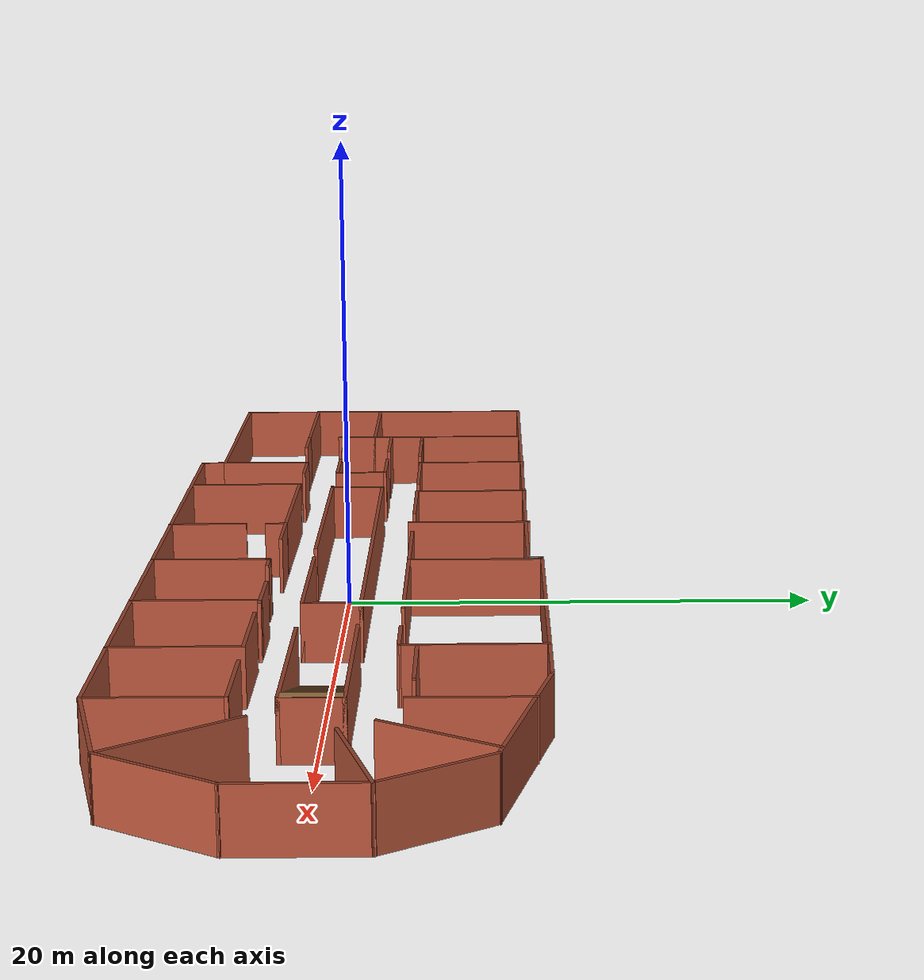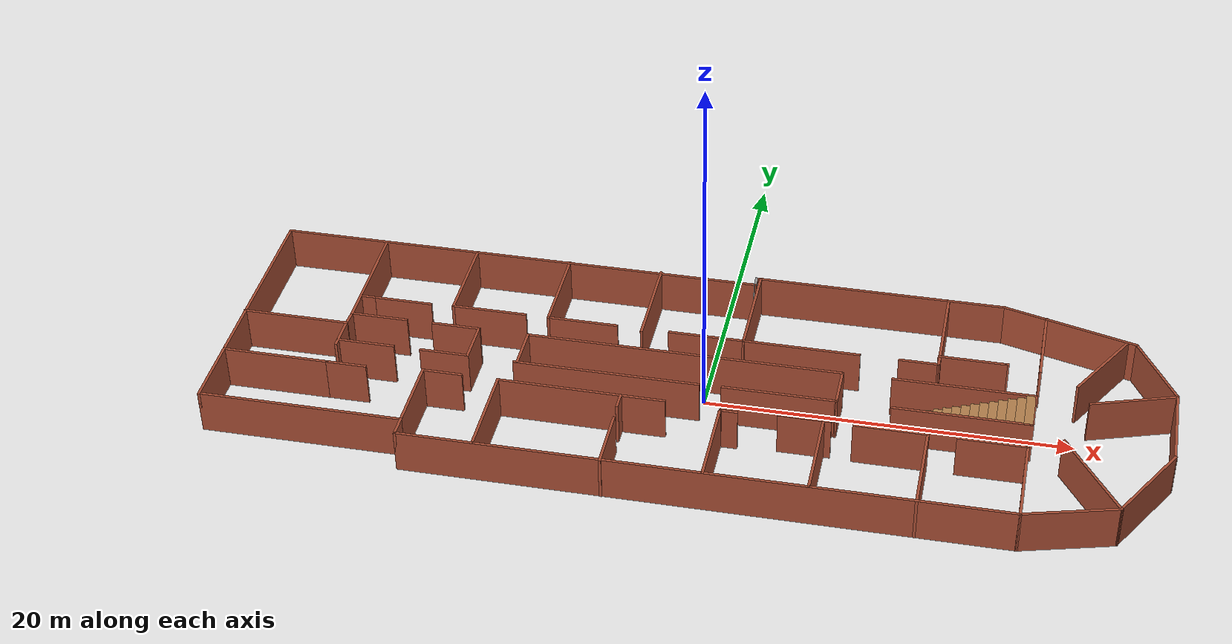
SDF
<?xml version='1.0'?>
<sdf version='1.7'>
  <model name='5ogNoWindowNoDoor'>
    <pose>-0.42618 0.023689 0 0 -0 0</pose>
    <link name='Stairs_2'>
      <visual name='Stairs_2_Visual_0'>
        <pose>11.0898 -0.209207 0.083333 0 -0 1.5708</pose>
        <geometry>
          <box>
            <size>2.26715 0.484083 0.166667</size>
          </box>
        </geometry>
        <material>
          <script>
            <uri>file://media/materials/scripts/gazebo.material</uri>
            <name>Gazebo/Wood</name>
          </script>
          <ambient>1 1 1 1</ambient>
        </material>
        <meta>
          <layer>0</layer>
        </meta>
      </visual>
      <collision name='Stairs_2_Collision_0'>
        <geometry>
          <box>
            <size>2.26715 0.484083 0.166667</size>
          </box>
        </geometry>
        <pose>11.0898 -0.209207 0.083333 0 -0 1.5708</pose>
      </collision>
      <visual name='Stairs_2_Visual_1'>
        <pose>11.5739 -0.209207 0.25 0 -0 1.5708</pose>
        <geometry>
          <box>
            <size>2.26715 0.484083 0.166667</size>
          </box>
        </geometry>
        <material>
          <script>
            <uri>file://media/materials/scripts/gazebo.material</uri>
            <name>Gazebo/Wood</name>
          </script>
          <ambient>1 1 1 1</ambient>
        </material>
        <meta>
          <layer>0</layer>
        </meta>
      </visual>
      <collision name='Stairs_2_Collision_1'>
        <geometry>
          <box>
            <size>2.26715 0.484083 0.166667</size>
          </box>
        </geometry>
        <pose>11.5739 -0.209207 0.25 0 -0 1.5708</pose>
      </collision>
      <visual name='Stairs_2_Visual_2'>
        <pose>12.058 -0.209207 0.416667 0 -0 1.5708</pose>
        <geometry>
          <box>
            <size>2.26715 0.484083 0.166667</size>
          </box>
        </geometry>
        <material>
          <script>
            <uri>file://media/materials/scripts/gazebo.material</uri>
            <name>Gazebo/Wood</name>
          </script>
          <ambient>1 1 1 1</ambient>
        </material>
        <meta>
          <layer>0</layer>
        </meta>
      </visual>
      <collision name='Stairs_2_Collision_2'>
        <geometry>
          <box>
            <size>2.26715 0.484083 0.166667</size>
          </box>
        </geometry>
        <pose>12.058 -0.209207 0.416667 0 -0 1.5708</pose>
      </collision>
      <visual name='Stairs_2_Visual_3'>
        <pose>12.542 -0.209207 0.583333 0 -0 1.5708</pose>
        <geometry>
          <box>
            <size>2.26715 0.484083 0.166667</size>
          </box>
        </geometry>
        <material>
          <script>
            <uri>file://media/materials/scripts/gazebo.material</uri>
            <name>Gazebo/Wood</name>
          </script>
          <ambient>1 1 1 1</ambient>
        </material>
        <meta>
          <layer>0</layer>
        </meta>
      </visual>
      <collision name='Stairs_2_Collision_3'>
        <geometry>
          <box>
            <size>2.26715 0.484083 0.166667</size>
          </box>
        </geometry>
        <pose>12.542 -0.209207 0.583333 0 -0 1.5708</pose>
      </collision>
      <visual name='Stairs_2_Visual_4'>
        <pose>13.0261 -0.209207 0.75 0 -0 1.5708</pose>
        <geometry>
          <box>
            <size>2.26715 0.484083 0.166667</size>
          </box>
        </geometry>
        <material>
          <script>
            <uri>file://media/materials/scripts/gazebo.material</uri>
            <name>Gazebo/Wood</name>
          </script>
          <ambient>1 1 1 1</ambient>
        </material>
        <meta>
          <layer>0</layer>
        </meta>
      </visual>
      <collision name='Stairs_2_Collision_4'>
        <geometry>
          <box>
            <size>2.26715 0.484083 0.166667</size>
          </box>
        </geometry>
        <pose>13.0261 -0.209207 0.75 0 -0 1.5708</pose>
      </collision>
      <visual name='Stairs_2_Visual_5'>
        <pose>13.5102 -0.209207 0.916667 0 -0 1.5708</pose>
        <geometry>
          <box>
            <size>2.26715 0.484083 0.166667</size>
          </box>
        </geometry>
        <material>
          <script>
            <uri>file://media/materials/scripts/gazebo.material</uri>
            <name>Gazebo/Wood</name>
          </script>
          <ambient>1 1 1 1</ambient>
        </material>
        <meta>
          <layer>0</layer>
        </meta>
      </visual>
      <collision name='Stairs_2_Collision_5'>
        <geometry>
          <box>
            <size>2.26715 0.484083 0.166667</size>
          </box>
        </geometry>
        <pose>13.5102 -0.209207 0.916667 0 -0 1.5708</pose>
      </collision>
      <visual name='Stairs_2_Visual_6'>
        <pose>13.9943 -0.209207 1.08333 0 -0 1.5708</pose>
        <geometry>
          <box>
            <size>2.26715 0.484083 0.166667</size>
          </box>
        </geometry>
        <material>
          <script>
            <uri>file://media/materials/scripts/gazebo.material</uri>
            <name>Gazebo/Wood</name>
          </script>
          <ambient>1 1 1 1</ambient>
        </material>
        <meta>
          <layer>0</layer>
        </meta>
      </visual>
      <collision name='Stairs_2_Collision_6'>
        <geometry>
          <box>
            <size>2.26715 0.484083 0.166667</size>
          </box>
        </geometry>
        <pose>13.9943 -0.209207 1.08333 0 -0 1.5708</pose>
      </collision>
      <visual name='Stairs_2_Visual_7'>
        <pose>14.4784 -0.209207 1.25 0 -0 1.5708</pose>
        <geometry>
          <box>
            <size>2.26715 0.484083 0.166667</size>
          </box>
        </geometry>
        <material>
          <script>
            <uri>file://media/materials/scripts/gazebo.material</uri>
            <name>Gazebo/Wood</name>
          </script>
          <ambient>1 1 1 1</ambient>
        </material>
        <meta>
          <layer>0</layer>
        </meta>
      </visual>
      <collision name='Stairs_2_Collision_7'>
        <geometry>
          <box>
            <size>2.26715 0.484083 0.166667</size>
          </box>
        </geometry>
        <pose>14.4784 -0.209207 1.25 0 -0 1.5708</pose>
      </collision>
      <visual name='Stairs_2_Visual_8'>
        <pose>14.9624 -0.209206 1.41667 0 -0 1.5708</pose>
        <geometry>
          <box>
            <size>2.26715 0.484083 0.166667</size>
          </box>
        </geometry>
        <material>
          <script>
            <uri>file://media/materials/scripts/gazebo.material</uri>
            <name>Gazebo/Wood</name>
          </script>
          <ambient>1 1 1 1</ambient>
        </material>
        <meta>
          <layer>0</layer>
        </meta>
      </visual>
      <collision name='Stairs_2_Collision_8'>
        <geometry>
          <box>
            <size>2.26715 0.484083 0.166667</size>
          </box>
        </geometry>
        <pose>14.9624 -0.209206 1.41667 0 -0 1.5708</pose>
      </collision>
      <visual name='Stairs_2_Visual_9'>
        <pose>15.4465 -0.209206 1.58333 0 -0 1.5708</pose>
        <geometry>
          <box>
            <size>2.26715 0.484083 0.166667</size>
          </box>
        </geometry>
        <material>
          <script>
            <uri>file://media/materials/scripts/gazebo.material</uri>
            <name>Gazebo/Wood</name>
          </script>
          <ambient>1 1 1 1</ambient>
        </material>
        <meta>
          <layer>0</layer>
        </meta>
      </visual>
      <collision name='Stairs_2_Collision_9'>
        <geometry>
          <box>
            <size>2.26715 0.484083 0.166667</size>
          </box>
        </geometry>
        <pose>15.4465 -0.209206 1.58333 0 -0 1.5708</pose>
      </collision>
      <visual name='Stairs_2_Visual_10'>
        <pose>15.9306 -0.209206 1.75 0 -0 1.5708</pose>
        <geometry>
          <box>
            <size>2.26715 0.484083 0.166667</size>
          </box>
        </geometry>
        <material>
          <script>
            <uri>file://media/materials/scripts/gazebo.material</uri>
            <name>Gazebo/Wood</name>
          </script>
          <ambient>1 1 1 1</ambient>
        </material>
        <meta>
          <layer>0</layer>
        </meta>
      </visual>
      <collision name='Stairs_2_Collision_10'>
        <geometry>
          <box>
            <size>2.26715 0.484083 0.166667</size>
          </box>
        </geometry>
        <pose>15.9306 -0.209206 1.75 0 -0 1.5708</pose>
      </collision>
      <visual name='Stairs_2_Visual_11'>
        <pose>16.4147 -0.209206 1.91667 0 -0 1.5708</pose>
        <geometry>
          <box>
            <size>2.26715 0.484083 0.166667</size>
          </box>
        </geometry>
        <material>
          <script>
            <uri>file://media/materials/scripts/gazebo.material</uri>
            <name>Gazebo/Wood</name>
          </script>
          <ambient>1 1 1 1</ambient>
        </material>
        <meta>
          <layer>0</layer>
        </meta>
      </visual>
      <collision name='Stairs_2_Collision_11'>
        <geometry>
          <box>
            <size>2.26715 0.484083 0.166667</size>
          </box>
        </geometry>
        <pose>16.4147 -0.209206 1.91667 0 -0 1.5708</pose>
      </collision>
      <visual name='Stairs_2_Visual_12'>
        <pose>16.8988 -0.209206 2.08333 0 -0 1.5708</pose>
        <geometry>
          <box>
            <size>2.26715 0.484083 0.166667</size>
          </box>
        </geometry>
        <material>
          <script>
            <uri>file://media/materials/scripts/gazebo.material</uri>
            <name>Gazebo/Wood</name>
          </script>
          <ambient>1 1 1 1</ambient>
        </material>
        <meta>
          <layer>0</layer>
        </meta>
      </visual>
      <collision name='Stairs_2_Collision_12'>
        <geometry>
          <box>
            <size>2.26715 0.484083 0.166667</size>
          </box>
        </geometry>
        <pose>16.8988 -0.209206 2.08333 0 -0 1.5708</pose>
      </collision>
      <visual name='Stairs_2_Visual_13'>
        <pose>17.3829 -0.209206 2.25 0 -0 1.5708</pose>
        <geometry>
          <box>
            <size>2.26715 0.484083 0.166667</size>
          </box>
        </geometry>
        <material>
          <script>
            <uri>file://media/materials/scripts/gazebo.material</uri>
            <name>Gazebo/Wood</name>
          </script>
          <ambient>1 1 1 1</ambient>
        </material>
        <meta>
          <layer>0</layer>
        </meta>
      </visual>
      <collision name='Stairs_2_Collision_13'>
        <geometry>
          <box>
            <size>2.26715 0.484083 0.166667</size>
          </box>
        </geometry>
        <pose>17.3829 -0.209206 2.25 0 -0 1.5708</pose>
      </collision>
      <visual name='Stairs_2_Visual_14'>
        <pose>17.8669 -0.209206 2.41667 0 -0 1.5708</pose>
        <geometry>
          <box>
            <size>2.26715 0.484083 0.166667</size>
          </box>
        </geometry>
        <material>
          <script>
            <uri>file://media/materials/scripts/gazebo.material</uri>
            <name>Gazebo/Wood</name>
          </script>
          <ambient>1 1 1 1</ambient>
        </material>
        <meta>
          <layer>0</layer>
        </meta>
      </visual>
      <collision name='Stairs_2_Collision_14'>
        <geometry>
          <box>
            <size>2.26715 0.484083 0.166667</size>
          </box>
        </geometry>
        <pose>17.8669 -0.209206 2.41667 0 -0 1.5708</pose>
      </collision>
    </link>
    <link name='Wall_0'>
      <collision name='Wall_0_Collision'>
        <geometry>
          <box>
            <size>15 0.15 2.5</size>
          </box>
        </geometry>
        <pose>0 0 1.25 0 -0 0</pose>
      </collision>
      <visual name='Wall_0_Visual'>
        <pose>0 0 1.25 0 -0 0</pose>
        <geometry>
          <box>
            <size>15 0.15 2.5</size>
          </box>
        </geometry>
        <material>
          <script>
            <uri>file://media/materials/scripts/gazebo.material</uri>
            <name>Gazebo/Bricks</name>
          </script>
          <ambient>1 1 1 1</ambient>
        </material>
        <meta>
          <layer>0</layer>
        </meta>
      </visual>
      <pose>-25.4634 0.26688 0 0 -0 -1.5708</pose>
    </link>
    <link name='Wall_1'>
      <collision name='Wall_1_Collision'>
        <geometry>
          <box>
            <size>11.25 0.15 2.5</size>
          </box>
        </geometry>
        <pose>0 0 1.25 0 -0 0</pose>
      </collision>
      <visual name='Wall_1_Visual'>
        <pose>0 0 1.25 0 -0 0</pose>
        <geometry>
          <box>
            <size>11.25 0.15 2.5</size>
          </box>
        </geometry>
        <material>
          <script>
            <uri>file://media/materials/scripts/gazebo.material</uri>
            <name>Gazebo/Bricks</name>
          </script>
          <ambient>1 1 1 1</ambient>
        </material>
        <meta>
          <layer>0</layer>
        </meta>
      </visual>
      <pose>-19.9134 -7.15812 0 0 -0 0</pose>
    </link>
    <link name='Wall_101'>
      <collision name='Wall_101_Collision'>
        <geometry>
          <box>
            <size>7.75 0.15 2.5</size>
          </box>
        </geometry>
        <pose>0 0 1.25 0 -0 0</pose>
      </collision>
      <visual name='Wall_101_Visual'>
        <pose>0 0 1.25 0 -0 0</pose>
        <geometry>
          <box>
            <size>7.75 0.15 2.5</size>
          </box>
        </geometry>
        <material>
          <script>
            <uri>file://media/materials/scripts/gazebo.material</uri>
            <name>Gazebo/Bricks</name>
          </script>
          <ambient>0.760784 0.662745 0.627451 1</ambient>
        </material>
        <meta>
          <layer>0</layer>
        </meta>
      </visual>
      <pose>14.2992 0.968144 0 0 -0 0</pose>
    </link>
    <link name='Wall_102'>
      <collision name='Wall_102_Collision'>
        <geometry>
          <box>
            <size>2.5 0.15 2.5</size>
          </box>
        </geometry>
        <pose>0 0 1.25 0 -0 0</pose>
      </collision>
      <visual name='Wall_102_Visual'>
        <pose>0 0 1.25 0 -0 0</pose>
        <geometry>
          <box>
            <size>2.5 0.15 2.5</size>
          </box>
        </geometry>
        <material>
          <script>
            <uri>file://media/materials/scripts/gazebo.material</uri>
            <name>Gazebo/Bricks</name>
          </script>
          <ambient>0.760784 0.662745 0.627451 1</ambient>
        </material>
        <meta>
          <layer>0</layer>
        </meta>
      </visual>
      <pose>18.0992 -0.206856 0 0 -0 -1.5708</pose>
    </link>
    <link name='Wall_103'>
      <collision name='Wall_103_Collision'>
        <geometry>
          <box>
            <size>7.5 0.15 2.5</size>
          </box>
        </geometry>
        <pose>0 0 1.25 0 -0 0</pose>
      </collision>
      <visual name='Wall_103_Visual'>
        <pose>0 0 1.25 0 -0 0</pose>
        <geometry>
          <box>
            <size>7.5 0.15 2.5</size>
          </box>
        </geometry>
        <material>
          <script>
            <uri>file://media/materials/scripts/gazebo.material</uri>
            <name>Gazebo/Bricks</name>
          </script>
          <ambient>0.760784 0.662745 0.627451 1</ambient>
        </material>
        <meta>
          <layer>0</layer>
        </meta>
      </visual>
      <pose>14.4242 -1.38186 0 0 -0 3.14159</pose>
    </link>
    <link name='Wall_11'>
      <collision name='Wall_11_Collision'>
        <geometry>
          <box>
            <size>11 0.15 2.5</size>
          </box>
        </geometry>
        <pose>0 0 1.25 0 -0 0</pose>
      </collision>
      <visual name='Wall_11_Visual'>
        <pose>0 0 1.25 0 -0 0</pose>
        <geometry>
          <box>
            <size>11 0.15 2.5</size>
          </box>
        </geometry>
        <material>
          <script>
            <uri>file://media/materials/scripts/gazebo.material</uri>
            <name>Gazebo/Bricks</name>
          </script>
          <ambient>1 1 1 1</ambient>
        </material>
        <meta>
          <layer>0</layer>
        </meta>
      </visual>
      <pose>7.29675 8.27933 0 0 -0 3.14159</pose>
    </link>
    <link name='Wall_14'>
      <collision name='Wall_14_Collision'>
        <geometry>
          <box>
            <size>27.5 0.15 2.5</size>
          </box>
        </geometry>
        <pose>0 0 1.25 0 -0 0</pose>
      </collision>
      <visual name='Wall_14_Visual'>
        <pose>0 0 1.25 0 -0 0</pose>
        <geometry>
          <box>
            <size>27.5 0.15 2.5</size>
          </box>
        </geometry>
        <material>
          <script>
            <uri>file://media/materials/scripts/gazebo.material</uri>
            <name>Gazebo/Bricks</name>
          </script>
          <ambient>1 1 1 1</ambient>
        </material>
        <meta>
          <layer>0</layer>
        </meta>
      </visual>
      <pose>-11.7884 7.69188 0 0 -0 0</pose>
    </link>
    <link name='Wall_15'>
      <collision name='Wall_15_Collision'>
        <geometry>
          <box>
            <size>0.737635 0.15 2.5</size>
          </box>
        </geometry>
        <pose>0 0 1.25 0 -0 0</pose>
      </collision>
      <visual name='Wall_15_Visual'>
        <pose>0 0 1.25 0 -0 0</pose>
        <geometry>
          <box>
            <size>0.737635 0.15 2.5</size>
          </box>
        </geometry>
        <material>
          <script>
            <uri>file://media/materials/scripts/gazebo.material</uri>
            <name>Gazebo/Grey</name>
          </script>
          <ambient>1 1 1 1</ambient>
        </material>
        <meta>
          <layer>0</layer>
        </meta>
      </visual>
      <pose>1.87915 7.9856 0 0 -0 1.59601</pose>
    </link>
    <link name='Wall_17'>
      <collision name='Wall_17_Collision'>
        <geometry>
          <box>
            <size>6 0.15 2.5</size>
          </box>
        </geometry>
        <pose>0 0 1.25 0 -0 0</pose>
      </collision>
      <visual name='Wall_17_Visual'>
        <pose>0 0 1.25 0 -0 0</pose>
        <geometry>
          <box>
            <size>6 0.15 2.5</size>
          </box>
        </geometry>
        <material>
          <script>
            <uri>file://media/materials/scripts/gazebo.material</uri>
            <name>Gazebo/Bricks</name>
          </script>
          <ambient>1 1 1 1</ambient>
        </material>
        <meta>
          <layer>0</layer>
        </meta>
      </visual>
      <pose>-22.5408 -3.3606 0 0 -0 0</pose>
    </link>
    <link name='Wall_18'>
      <collision name='Wall_18_Collision'>
        <geometry>
          <box>
            <size>2.25 0.15 2.5</size>
          </box>
        </geometry>
        <pose>0 0 1.25 0 -0 0</pose>
      </collision>
      <visual name='Wall_18_Visual'>
        <pose>0 0 1.25 0 -0 0</pose>
        <geometry>
          <box>
            <size>2.25 0.15 2.5</size>
          </box>
        </geometry>
        <material>
          <script>
            <uri>file://media/materials/scripts/gazebo.material</uri>
            <name>Gazebo/Bricks</name>
          </script>
          <ambient>1 1 1 1</ambient>
        </material>
        <meta>
          <layer>0</layer>
        </meta>
      </visual>
      <pose>-18.5658 -3.3606 0 0 -0 0</pose>
    </link>
    <link name='Wall_2'>
      <collision name='Wall_2_Collision'>
        <geometry>
          <box>
            <size>1.25 0.15 2.5</size>
          </box>
        </geometry>
        <pose>0 0 1.25 0 -0 0</pose>
      </collision>
      <visual name='Wall_2_Visual'>
        <pose>0 0 1.25 0 -0 0</pose>
        <geometry>
          <box>
            <size>1.25 0.15 2.5</size>
          </box>
        </geometry>
        <material>
          <script>
            <uri>file://media/materials/scripts/gazebo.material</uri>
            <name>Gazebo/Bricks</name>
          </script>
          <ambient>1 1 1 1</ambient>
        </material>
        <meta>
          <layer>0</layer>
        </meta>
      </visual>
      <pose>-14.3634 -7.70812 0 0 -0 -1.5708</pose>
    </link>
    <link name='Wall_20'>
      <collision name='Wall_20_Collision'>
        <geometry>
          <box>
            <size>2 0.15 2.5</size>
          </box>
        </geometry>
        <pose>0 0 1.25 0 -0 0</pose>
      </collision>
      <visual name='Wall_20_Visual'>
        <pose>0 0 1.25 0 -0 0</pose>
        <geometry>
          <box>
            <size>2 0.15 2.5</size>
          </box>
        </geometry>
        <material>
          <script>
            <uri>file://media/materials/scripts/gazebo.material</uri>
            <name>Gazebo/Bricks</name>
          </script>
          <ambient>1 1 1 1</ambient>
        </material>
        <meta>
          <layer>0</layer>
        </meta>
      </visual>
      <pose>-19.6402 -0.857835 0 0 -0 1.5708</pose>
    </link>
    <link name='Wall_21'>
      <collision name='Wall_21_Collision'>
        <geometry>
          <box>
            <size>6 0.15 2.5</size>
          </box>
        </geometry>
        <pose>0 0 1.25 0 -0 0</pose>
      </collision>
      <visual name='Wall_21_Visual'>
        <pose>0 0 1.25 0 -0 0</pose>
        <geometry>
          <box>
            <size>6 0.15 2.5</size>
          </box>
        </geometry>
        <material>
          <script>
            <uri>file://media/materials/scripts/gazebo.material</uri>
            <name>Gazebo/Bricks</name>
          </script>
          <ambient>1 1 1 1</ambient>
        </material>
        <meta>
          <layer>0</layer>
        </meta>
      </visual>
      <pose>-22.5652 0.067165 0 0 -0 3.14159</pose>
    </link>
    <link name='Wall_23'>
      <collision name='Wall_23_Collision'>
        <geometry>
          <box>
            <size>3.25 0.15 2.5</size>
          </box>
        </geometry>
        <pose>0 0 1.25 0 -0 0</pose>
      </collision>
      <visual name='Wall_23_Visual'>
        <pose>0 0 1.25 0 -0 0</pose>
        <geometry>
          <box>
            <size>3.25 0.15 2.5</size>
          </box>
        </geometry>
        <material>
          <script>
            <uri>file://media/materials/scripts/gazebo.material</uri>
            <name>Gazebo/Bricks</name>
          </script>
          <ambient>1 1 1 1</ambient>
        </material>
        <meta>
          <layer>0</layer>
        </meta>
      </visual>
      <pose>-18.0902 -1.41874 0 0 -0 0</pose>
    </link>
    <link name='Wall_25'>
      <collision name='Wall_25_Collision'>
        <geometry>
          <box>
            <size>2.75 0.15 2.5</size>
          </box>
        </geometry>
        <pose>0 0 1.25 0 -0 0</pose>
      </collision>
      <visual name='Wall_25_Visual'>
        <pose>0 0 1.25 0 -0 0</pose>
        <geometry>
          <box>
            <size>2.75 0.15 2.5</size>
          </box>
        </geometry>
        <material>
          <script>
            <uri>file://media/materials/scripts/gazebo.material</uri>
            <name>Gazebo/Bricks</name>
          </script>
          <ambient>1 1 1 1</ambient>
        </material>
        <meta>
          <layer>0</layer>
        </meta>
      </visual>
      <pose>-13.6474 -1.41874 0 0 -0 0</pose>
    </link>
    <link name='Wall_26'>
      <collision name='Wall_26_Collision'>
        <geometry>
          <box>
            <size>2.5 0.15 2.5</size>
          </box>
        </geometry>
        <pose>0 0 1.25 0 -0 0</pose>
      </collision>
      <visual name='Wall_26_Visual'>
        <pose>0 0 1.25 0 -0 0</pose>
        <geometry>
          <box>
            <size>2.5 0.15 2.5</size>
          </box>
        </geometry>
        <material>
          <script>
            <uri>file://media/materials/scripts/gazebo.material</uri>
            <name>Gazebo/Bricks</name>
          </script>
          <ambient>1 1 1 1</ambient>
        </material>
        <meta>
          <layer>0</layer>
        </meta>
      </visual>
      <pose>-12.3474 -0.243735 0 0 -0 1.5708</pose>
    </link>
    <link name='Wall_27'>
      <collision name='Wall_27_Collision'>
        <geometry>
          <box>
            <size>2.75 0.15 2.5</size>
          </box>
        </geometry>
        <pose>0 0 1.25 0 -0 0</pose>
      </collision>
      <visual name='Wall_27_Visual'>
        <pose>0 0 1.25 0 -0 0</pose>
        <geometry>
          <box>
            <size>2.75 0.15 2.5</size>
          </box>
        </geometry>
        <material>
          <script>
            <uri>file://media/materials/scripts/gazebo.material</uri>
            <name>Gazebo/Bricks</name>
          </script>
          <ambient>1 1 1 1</ambient>
        </material>
        <meta>
          <layer>0</layer>
        </meta>
      </visual>
      <pose>-13.6474 0.931265 0 0 -0 3.14159</pose>
    </link>
    <link name='Wall_29'>
      <collision name='Wall_29_Collision'>
        <geometry>
          <box>
            <size>3.25 0.15 2.5</size>
          </box>
        </geometry>
        <pose>0 0 1.25 0 -0 0</pose>
      </collision>
      <visual name='Wall_29_Visual'>
        <pose>0 0 1.25 0 -0 0</pose>
        <geometry>
          <box>
            <size>3.25 0.15 2.5</size>
          </box>
        </geometry>
        <material>
          <script>
            <uri>file://media/materials/scripts/gazebo.material</uri>
            <name>Gazebo/Bricks</name>
          </script>
          <ambient>1 1 1 1</ambient>
        </material>
        <meta>
          <layer>0</layer>
        </meta>
      </visual>
      <pose>-18.0347 0.927688 0 0 -0 3.14159</pose>
    </link>
    <link name='Wall_3'>
      <collision name='Wall_3_Collision'>
        <geometry>
          <box>
            <size>32.5 0.15 2.5</size>
          </box>
        </geometry>
        <pose>0 0 1.25 0 -0 0</pose>
      </collision>
      <visual name='Wall_3_Visual'>
        <pose>0 0 1.25 0 -0 0</pose>
        <geometry>
          <box>
            <size>32.5 0.15 2.5</size>
          </box>
        </geometry>
        <material>
          <script>
            <uri>file://media/materials/scripts/gazebo.material</uri>
            <name>Gazebo/Bricks</name>
          </script>
          <ambient>1 1 1 1</ambient>
        </material>
        <meta>
          <layer>0</layer>
        </meta>
      </visual>
      <pose>1.81156 -8.25812 0 0 -0 0</pose>
    </link>
    <link name='Wall_30'>
      <collision name='Wall_30_Collision'>
        <geometry>
          <box>
            <size>1.01231 0.15 2.5</size>
          </box>
        </geometry>
        <pose>0 0 1.25 0 -0 0</pose>
      </collision>
      <visual name='Wall_30_Visual'>
        <pose>0 0 1.25 0 -0 0</pose>
        <geometry>
          <box>
            <size>1.01231 0.15 2.5</size>
          </box>
        </geometry>
        <material>
          <script>
            <uri>file://media/materials/scripts/gazebo.material</uri>
            <name>Gazebo/Bricks</name>
          </script>
          <ambient>1 1 1 1</ambient>
        </material>
        <meta>
          <layer>0</layer>
        </meta>
      </visual>
      <pose>-19.6125 0.497426 0 0 -0 -1.63524</pose>
    </link>
    <link name='Wall_32'>
      <collision name='Wall_32_Collision'>
        <geometry>
          <box>
            <size>4.25 0.15 2.5</size>
          </box>
        </geometry>
        <pose>0 0 1.25 0 -0 0</pose>
      </collision>
      <visual name='Wall_32_Visual'>
        <pose>0 0 1.25 0 -0 0</pose>
        <geometry>
          <box>
            <size>4.25 0.15 2.5</size>
          </box>
        </geometry>
        <material>
          <script>
            <uri>file://media/materials/scripts/gazebo.material</uri>
            <name>Gazebo/Bricks</name>
          </script>
          <ambient>1 1 1 1</ambient>
        </material>
        <meta>
          <layer>0</layer>
        </meta>
      </visual>
      <pose>-14.3634 -5.10812 0 0 -0 1.5708</pose>
    </link>
    <link name='Wall_33'>
      <collision name='Wall_33_Collision'>
        <geometry>
          <box>
            <size>2.25 0.15 2.5</size>
          </box>
        </geometry>
        <pose>0 0 1.25 0 -0 0</pose>
      </collision>
      <visual name='Wall_33_Visual'>
        <pose>0 0 1.25 0 -0 0</pose>
        <geometry>
          <box>
            <size>2.25 0.15 2.5</size>
          </box>
        </geometry>
        <material>
          <script>
            <uri>file://media/materials/scripts/gazebo.material</uri>
            <name>Gazebo/Bricks</name>
          </script>
          <ambient>1 1 1 1</ambient>
        </material>
        <meta>
          <layer>0</layer>
        </meta>
      </visual>
      <pose>-13.3134 -3.05812 0 0 -0 0</pose>
    </link>
    <link name='Wall_35'>
      <collision name='Wall_35_Collision'>
        <geometry>
          <box>
            <size>5.25 0.15 2.5</size>
          </box>
        </geometry>
        <pose>0 0 1.25 0 -0 0</pose>
      </collision>
      <visual name='Wall_35_Visual'>
        <pose>0 0 1.25 0 -0 0</pose>
        <geometry>
          <box>
            <size>5.25 0.15 2.5</size>
          </box>
        </geometry>
        <material>
          <script>
            <uri>file://media/materials/scripts/gazebo.material</uri>
            <name>Gazebo/Bricks</name>
          </script>
          <ambient>1 1 1 1</ambient>
        </material>
        <meta>
          <layer>0</layer>
        </meta>
      </visual>
      <pose>-10.2141 -5.62741 0 0 -0 -1.5708</pose>
    </link>
    <link name='Wall_39'>
      <collision name='Wall_39_Collision'>
        <geometry>
          <box>
            <size>3.5 0.15 2.5</size>
          </box>
        </geometry>
        <pose>0 0 1.25 0 -0 0</pose>
      </collision>
      <visual name='Wall_39_Visual'>
        <pose>0 0 1.25 0 -0 0</pose>
        <geometry>
          <box>
            <size>3.5 0.15 2.5</size>
          </box>
        </geometry>
        <material>
          <script>
            <uri>file://media/materials/scripts/gazebo.material</uri>
            <name>Gazebo/Bricks</name>
          </script>
          <ambient>1 1 1 1</ambient>
        </material>
        <meta>
          <layer>0</layer>
        </meta>
      </visual>
      <pose>-3.458 -6.62118 0 0 -0 1.5708</pose>
    </link>
    <link name='Wall_4'>
      <collision name='Wall_4_Collision'>
        <geometry>
          <box>
            <size>5.25 0.15 2.5</size>
          </box>
        </geometry>
        <pose>0 0 1.25 0 -0 0</pose>
      </collision>
      <visual name='Wall_4_Visual'>
        <pose>0 0 1.25 0 -0 0</pose>
        <geometry>
          <box>
            <size>5.25 0.15 2.5</size>
          </box>
        </geometry>
        <material>
          <script>
            <uri>file://media/materials/scripts/gazebo.material</uri>
            <name>Gazebo/Bricks</name>
          </script>
          <ambient>1 1 1 1</ambient>
        </material>
        <meta>
          <layer>0</layer>
        </meta>
      </visual>
      <pose>20.4497 -7.59813 0 0 -0 0.261799</pose>
    </link>
    <link name='Wall_41'>
      <collision name='Wall_41_Collision'>
        <geometry>
          <box>
            <size>5 0.15 2.5</size>
          </box>
        </geometry>
        <pose>0 0 1.25 0 -0 0</pose>
      </collision>
      <visual name='Wall_41_Visual'>
        <pose>0 0 1.25 0 -0 0</pose>
        <geometry>
          <box>
            <size>5 0.15 2.5</size>
          </box>
        </geometry>
        <material>
          <script>
            <uri>file://media/materials/scripts/gazebo.material</uri>
            <name>Gazebo/Bricks</name>
          </script>
          <ambient>1 1 1 1</ambient>
        </material>
        <meta>
          <layer>0</layer>
        </meta>
      </visual>
      <pose>1.88213 -5.83073 0 0 -0 1.5708</pose>
    </link>
    <link name='Wall_43'>
      <collision name='Wall_43_Collision'>
        <geometry>
          <box>
            <size>1 0.15 2.5</size>
          </box>
        </geometry>
        <pose>0 0 1.25 0 -0 0</pose>
      </collision>
      <visual name='Wall_43_Visual'>
        <pose>0 0 1.25 0 -0 0</pose>
        <geometry>
          <box>
            <size>1 0.15 2.5</size>
          </box>
        </geometry>
        <material>
          <script>
            <uri>file://media/materials/scripts/gazebo.material</uri>
            <name>Gazebo/Bricks</name>
          </script>
          <ambient>1 1 1 1</ambient>
        </material>
        <meta>
          <layer>0</layer>
        </meta>
      </visual>
      <pose>-3.49846 -3.54244 0 0 -0 1.5708</pose>
    </link>
    <link name='Wall_44'>
      <collision name='Wall_44_Collision'>
        <geometry>
          <box>
            <size>2.5 0.15 2.5</size>
          </box>
        </geometry>
        <pose>0 0 1.25 0 -0 0</pose>
      </collision>
      <visual name='Wall_44_Visual'>
        <pose>0 0 1.25 0 -0 0</pose>
        <geometry>
          <box>
            <size>2.5 0.15 2.5</size>
          </box>
        </geometry>
        <material>
          <script>
            <uri>file://media/materials/scripts/gazebo.material</uri>
            <name>Gazebo/Bricks</name>
          </script>
          <ambient>1 1 1 1</ambient>
        </material>
        <meta>
          <layer>0</layer>
        </meta>
      </visual>
      <pose>-2.32346 -3.11744 0 0 -0 0</pose>
    </link>
    <link name='Wall_46'>
      <collision name='Wall_46_Collision'>
        <geometry>
          <box>
            <size>6.86575 0.15 2.5</size>
          </box>
        </geometry>
        <pose>0 0 1.25 0 -0 0</pose>
      </collision>
      <visual name='Wall_46_Visual'>
        <pose>0 0 1.25 0 -0 0</pose>
        <geometry>
          <box>
            <size>6.86575 0.15 2.5</size>
          </box>
        </geometry>
        <material>
          <script>
            <uri>file://media/materials/scripts/gazebo.material</uri>
            <name>Gazebo/Bricks</name>
          </script>
          <ambient>1 1 1 1</ambient>
        </material>
        <meta>
          <layer>0</layer>
        </meta>
      </visual>
      <pose>-6.85627 -3.09742 0 0 -0 3.13563</pose>
    </link>
    <link name='Wall_48'>
      <collision name='Wall_48_Collision'>
        <geometry>
          <box>
            <size>0.25 0.15 2.5</size>
          </box>
        </geometry>
        <pose>0 0 1.25 0 -0 0</pose>
      </collision>
      <visual name='Wall_48_Visual'>
        <pose>0 0 1.25 0 -0 0</pose>
        <geometry>
          <box>
            <size>0.25 0.15 2.5</size>
          </box>
        </geometry>
        <material>
          <script>
            <uri>file://media/materials/scripts/gazebo.material</uri>
            <name>Gazebo/Bricks</name>
          </script>
          <ambient>1 1 1 1</ambient>
        </material>
        <meta>
          <layer>0</layer>
        </meta>
      </visual>
      <pose>1.89508 -3.35743 0 0 -0 1.309</pose>
    </link>
    <link name='Wall_49'>
      <collision name='Wall_49_Collision'>
        <geometry>
          <box>
            <size>1 0.15 2.5</size>
          </box>
        </geometry>
        <pose>0 0 1.25 0 -0 0</pose>
      </collision>
      <visual name='Wall_49_Visual'>
        <pose>0 0 1.25 0 -0 0</pose>
        <geometry>
          <box>
            <size>1 0.15 2.5</size>
          </box>
        </geometry>
        <material>
          <script>
            <uri>file://media/materials/scripts/gazebo.material</uri>
            <name>Gazebo/Bricks</name>
          </script>
          <ambient>1 1 1 1</ambient>
        </material>
        <meta>
          <layer>0</layer>
        </meta>
      </visual>
      <pose>2.33302 -3.30913 0 0 -0 0</pose>
    </link>
    <link name='Wall_5'>
      <collision name='Wall_5_Collision'>
        <geometry>
          <box>
            <size>5.25 0.15 2.5</size>
          </box>
        </geometry>
        <pose>0 0 1.25 0 -0 0</pose>
      </collision>
      <visual name='Wall_5_Visual'>
        <pose>0 0 1.25 0 -0 0</pose>
        <geometry>
          <box>
            <size>5.25 0.15 2.5</size>
          </box>
        </geometry>
        <material>
          <script>
            <uri>file://media/materials/scripts/gazebo.material</uri>
            <name>Gazebo/Bricks</name>
          </script>
          <ambient>1 1 1 1</ambient>
        </material>
        <meta>
          <layer>0</layer>
        </meta>
      </visual>
      <pose>24.1878 -4.72978 0 0 -0 1.0472</pose>
    </link>
    <link name='Wall_51'>
      <collision name='Wall_51_Collision'>
        <geometry>
          <box>
            <size>5.25 0.15 2.5</size>
          </box>
        </geometry>
        <pose>0 0 1.25 0 -0 0</pose>
      </collision>
      <visual name='Wall_51_Visual'>
        <pose>0 0 1.25 0 -0 0</pose>
        <geometry>
          <box>
            <size>5.25 0.15 2.5</size>
          </box>
        </geometry>
        <material>
          <script>
            <uri>file://media/materials/scripts/gazebo.material</uri>
            <name>Gazebo/Bricks</name>
          </script>
          <ambient>1 1 1 1</ambient>
        </material>
        <meta>
          <layer>0</layer>
        </meta>
      </visual>
      <pose>7.34364 -5.66527 0 0 -0 1.5708</pose>
    </link>
    <link name='Wall_52'>
      <collision name='Wall_52_Collision'>
        <geometry>
          <box>
            <size>2.5 0.15 2.5</size>
          </box>
        </geometry>
        <pose>0 0 1.25 0 -0 0</pose>
      </collision>
      <visual name='Wall_52_Visual'>
        <pose>0 0 1.25 0 -0 0</pose>
        <geometry>
          <box>
            <size>2.5 0.15 2.5</size>
          </box>
        </geometry>
        <material>
          <script>
            <uri>file://media/materials/scripts/gazebo.material</uri>
            <name>Gazebo/Bricks</name>
          </script>
          <ambient>1 1 1 1</ambient>
        </material>
        <meta>
          <layer>0</layer>
        </meta>
      </visual>
      <pose>6.16864 -3.11527 0 0 -0 3.14159</pose>
    </link>
    <link name='Wall_54'>
      <collision name='Wall_54_Collision'>
        <geometry>
          <box>
            <size>0.5 0.15 2.5</size>
          </box>
        </geometry>
        <pose>0 0 1.25 0 -0 0</pose>
      </collision>
      <visual name='Wall_54_Visual'>
        <pose>0 0 1.25 0 -0 0</pose>
        <geometry>
          <box>
            <size>0.5 0.15 2.5</size>
          </box>
        </geometry>
        <material>
          <script>
            <uri>file://media/materials/scripts/gazebo.material</uri>
            <name>Gazebo/Bricks</name>
          </script>
          <ambient>1 1 1 1</ambient>
        </material>
        <meta>
          <layer>0</layer>
        </meta>
      </visual>
      <pose>7.51864 -3.11527 0 0 -0 0</pose>
    </link>
    <link name='Wall_56'>
      <collision name='Wall_56_Collision'>
        <geometry>
          <box>
            <size>4 0.15 2.5</size>
          </box>
        </geometry>
        <pose>0 0 1.25 0 -0 0</pose>
      </collision>
      <visual name='Wall_56_Visual'>
        <pose>0 0 1.25 0 -0 0</pose>
        <geometry>
          <box>
            <size>4 0.15 2.5</size>
          </box>
        </geometry>
        <material>
          <script>
            <uri>file://media/materials/scripts/gazebo.material</uri>
            <name>Gazebo/Bricks</name>
          </script>
          <ambient>1 1 1 1</ambient>
        </material>
        <meta>
          <layer>0</layer>
        </meta>
      </visual>
      <pose>10.8869 -3.15833 0 0 -0 0</pose>
    </link>
    <link name='Wall_57'>
      <collision name='Wall_57_Collision'>
        <geometry>
          <box>
            <size>5.25 0.15 2.5</size>
          </box>
        </geometry>
        <pose>0 0 1.25 0 -0 0</pose>
      </collision>
      <visual name='Wall_57_Visual'>
        <pose>0 0 1.25 0 -0 0</pose>
        <geometry>
          <box>
            <size>5.25 0.15 2.5</size>
          </box>
        </geometry>
        <material>
          <script>
            <uri>file://media/materials/scripts/gazebo.material</uri>
            <name>Gazebo/Bricks</name>
          </script>
          <ambient>1 1 1 1</ambient>
        </material>
        <meta>
          <layer>0</layer>
        </meta>
      </visual>
      <pose>12.8119 -5.70833 0 0 -0 -1.5708</pose>
    </link>
    <link name='Wall_59'>
      <collision name='Wall_59_Collision'>
        <geometry>
          <box>
            <size>5.25 0.15 2.5</size>
          </box>
        </geometry>
        <pose>0 0 1.25 0 -0 0</pose>
      </collision>
      <visual name='Wall_59_Visual'>
        <pose>0 0 1.25 0 -0 0</pose>
        <geometry>
          <box>
            <size>5.25 0.15 2.5</size>
          </box>
        </geometry>
        <material>
          <script>
            <uri>file://media/materials/scripts/gazebo.material</uri>
            <name>Gazebo/Bricks</name>
          </script>
          <ambient>1 1 1 1</ambient>
        </material>
        <meta>
          <layer>0</layer>
        </meta>
      </visual>
      <pose>17.9866 -5.70812 0 0 -0 1.5708</pose>
    </link>
    <link name='Wall_6'>
      <collision name='Wall_6_Collision'>
        <geometry>
          <box>
            <size>5 0.15 2.5</size>
          </box>
        </geometry>
        <pose>0 0 1.25 0 -0 0</pose>
      </collision>
      <visual name='Wall_6_Visual'>
        <pose>0 0 1.25 0 -0 0</pose>
        <geometry>
          <box>
            <size>5 0.15 2.5</size>
          </box>
        </geometry>
        <material>
          <script>
            <uri>file://media/materials/scripts/gazebo.material</uri>
            <name>Gazebo/Bricks</name>
          </script>
          <ambient>1 1 1 1</ambient>
        </material>
        <meta>
          <layer>0</layer>
        </meta>
      </visual>
      <pose>25.4628 -0.096414 0 0 -0 1.5708</pose>
    </link>
    <link name='Wall_60'>
      <collision name='Wall_60_Collision'>
        <geometry>
          <box>
            <size>3.75 0.15 2.5</size>
          </box>
        </geometry>
        <pose>0 0 1.25 0 -0 0</pose>
      </collision>
      <visual name='Wall_60_Visual'>
        <pose>0 0 1.25 0 -0 0</pose>
        <geometry>
          <box>
            <size>3.75 0.15 2.5</size>
          </box>
        </geometry>
        <material>
          <script>
            <uri>file://media/materials/scripts/gazebo.material</uri>
            <name>Gazebo/Bricks</name>
          </script>
          <ambient>1 1 1 1</ambient>
        </material>
        <meta>
          <layer>0</layer>
        </meta>
      </visual>
      <pose>16.1866 -3.15812 0 0 -0 3.14159</pose>
    </link>
    <link name='Wall_62'>
      <collision name='Wall_62_Collision'>
        <geometry>
          <box>
            <size>6.74449 0.15 2.5</size>
          </box>
        </geometry>
        <pose>0 0 1.25 0 -0 0</pose>
      </collision>
      <visual name='Wall_62_Visual'>
        <pose>0 0 1.25 0 -0 0</pose>
        <geometry>
          <box>
            <size>6.74449 0.15 2.5</size>
          </box>
        </geometry>
        <material>
          <script>
            <uri>file://media/materials/scripts/gazebo.material</uri>
            <name>Gazebo/Bricks</name>
          </script>
          <ambient>1 1 1 1</ambient>
        </material>
        <meta>
          <layer>0</layer>
        </meta>
      </visual>
      <pose>-19.6125 4.22482 0 0 -0 -1.56238</pose>
    </link>
    <link name='Wall_64'>
      <collision name='Wall_64_Collision'>
        <geometry>
          <box>
            <size>1 0.15 2.5</size>
          </box>
        </geometry>
        <pose>0 0 1.25 0 -0 0</pose>
      </collision>
      <visual name='Wall_64_Visual'>
        <pose>0 0 1.25 0 -0 0</pose>
        <geometry>
          <box>
            <size>1 0.15 2.5</size>
          </box>
        </geometry>
        <material>
          <script>
            <uri>file://media/materials/scripts/gazebo.material</uri>
            <name>Gazebo/Bricks</name>
          </script>
          <ambient>1 1 1 1</ambient>
        </material>
        <meta>
          <layer>0</layer>
        </meta>
      </visual>
      <pose>-19.0939 2.54591 0 0 -0 0</pose>
    </link>
    <link name='Wall_65'>
      <collision name='Wall_65_Collision'>
        <geometry>
          <box>
            <size>3.25 0.15 2.5</size>
          </box>
        </geometry>
        <pose>0 0 1.25 0 -0 0</pose>
      </collision>
      <visual name='Wall_65_Visual'>
        <pose>0 0 1.25 0 -0 0</pose>
        <geometry>
          <box>
            <size>3.25 0.15 2.5</size>
          </box>
        </geometry>
        <material>
          <script>
            <uri>file://media/materials/scripts/gazebo.material</uri>
            <name>Gazebo/Bricks</name>
          </script>
          <ambient>1 1 1 1</ambient>
        </material>
        <meta>
          <layer>0</layer>
        </meta>
      </visual>
      <pose>-17.1189 2.54591 0 0 -0 0</pose>
    </link>
    <link name='Wall_67'>
      <collision name='Wall_67_Collision'>
        <geometry>
          <box>
            <size>5.25 0.15 2.5</size>
          </box>
        </geometry>
        <pose>0 0 1.25 0 -0 0</pose>
      </collision>
      <visual name='Wall_67_Visual'>
        <pose>0 0 1.25 0 -0 0</pose>
        <geometry>
          <box>
            <size>5.25 0.15 2.5</size>
          </box>
        </geometry>
        <material>
          <script>
            <uri>file://media/materials/scripts/gazebo.material</uri>
            <name>Gazebo/Bricks</name>
          </script>
          <ambient>1 1 1 1</ambient>
        </material>
        <meta>
          <layer>0</layer>
        </meta>
      </visual>
      <pose>-14.2596 5.17422 0 0 -0 -1.5708</pose>
    </link>
    <link name='Wall_68'>
      <collision name='Wall_68_Collision'>
        <geometry>
          <box>
            <size>4.25 0.15 2.5</size>
          </box>
        </geometry>
        <pose>0 0 1.25 0 -0 0</pose>
      </collision>
      <visual name='Wall_68_Visual'>
        <pose>0 0 1.25 0 -0 0</pose>
        <geometry>
          <box>
            <size>4.25 0.15 2.5</size>
          </box>
        </geometry>
        <material>
          <script>
            <uri>file://media/materials/scripts/gazebo.material</uri>
            <name>Gazebo/Bricks</name>
          </script>
          <ambient>1 1 1 1</ambient>
        </material>
        <meta>
          <layer>0</layer>
        </meta>
      </visual>
      <pose>-12.2096 2.62423 0 0 -0 0</pose>
    </link>
    <link name='Wall_7'>
      <collision name='Wall_7_Collision'>
        <geometry>
          <box>
            <size>4.75 0.15 2.5</size>
          </box>
        </geometry>
        <pose>0 0 1.25 0 -0 0</pose>
      </collision>
      <visual name='Wall_7_Visual'>
        <pose>0 0 1.25 0 -0 0</pose>
        <geometry>
          <box>
            <size>4.75 0.15 2.5</size>
          </box>
        </geometry>
        <material>
          <script>
            <uri>file://media/materials/scripts/gazebo.material</uri>
            <name>Gazebo/Bricks</name>
          </script>
          <ambient>1 1 1 1</ambient>
        </material>
        <meta>
          <layer>0</layer>
        </meta>
      </visual>
      <pose>24.3128 4.32045 0 0 -0 2.0944</pose>
    </link>
    <link name='Wall_70'>
      <collision name='Wall_70_Collision'>
        <geometry>
          <box>
            <size>5.25 0.15 2.5</size>
          </box>
        </geometry>
        <pose>0 0 1.25 0 -0 0</pose>
      </collision>
      <visual name='Wall_70_Visual'>
        <pose>0 0 1.25 0 -0 0</pose>
        <geometry>
          <box>
            <size>5.25 0.15 2.5</size>
          </box>
        </geometry>
        <material>
          <script>
            <uri>file://media/materials/scripts/gazebo.material</uri>
            <name>Gazebo/Bricks</name>
          </script>
          <ambient>1 1 1 1</ambient>
        </material>
        <meta>
          <layer>0</layer>
        </meta>
      </visual>
      <pose>-8.83859 5.17422 0 0 -0 -1.5708</pose>
    </link>
    <link name='Wall_71'>
      <collision name='Wall_71_Collision'>
        <geometry>
          <box>
            <size>4 0.15 2.5</size>
          </box>
        </geometry>
        <pose>0 0 1.25 0 -0 0</pose>
      </collision>
      <visual name='Wall_71_Visual'>
        <pose>0 0 1.25 0 -0 0</pose>
        <geometry>
          <box>
            <size>4 0.15 2.5</size>
          </box>
        </geometry>
        <material>
          <script>
            <uri>file://media/materials/scripts/gazebo.material</uri>
            <name>Gazebo/Bricks</name>
          </script>
          <ambient>1 1 1 1</ambient>
        </material>
        <meta>
          <layer>0</layer>
        </meta>
      </visual>
      <pose>-6.91359 2.62423 0 0 -0 0</pose>
    </link>
    <link name='Wall_73'>
      <collision name='Wall_73_Collision'>
        <geometry>
          <box>
            <size>5.5 0.15 2.5</size>
          </box>
        </geometry>
        <pose>0 0 1.25 0 -0 0</pose>
      </collision>
      <visual name='Wall_73_Visual'>
        <pose>0 0 1.25 0 -0 0</pose>
        <geometry>
          <box>
            <size>5.5 0.15 2.5</size>
          </box>
        </geometry>
        <material>
          <script>
            <uri>file://media/materials/scripts/gazebo.material</uri>
            <name>Gazebo/Bricks</name>
          </script>
          <ambient>1 1 1 1</ambient>
        </material>
        <meta>
          <layer>0</layer>
        </meta>
      </visual>
      <pose>-3.53891 5.13014 0 0 -0 -1.5708</pose>
    </link>
    <link name='Wall_75'>
      <collision name='Wall_75_Collision'>
        <geometry>
          <box>
            <size>4.25 0.15 2.5</size>
          </box>
        </geometry>
        <pose>0 0 1.25 0 -0 0</pose>
      </collision>
      <visual name='Wall_75_Visual'>
        <pose>0 0 1.25 0 -0 0</pose>
        <geometry>
          <box>
            <size>4.25 0.15 2.5</size>
          </box>
        </geometry>
        <material>
          <script>
            <uri>file://media/materials/scripts/gazebo.material</uri>
            <name>Gazebo/Bricks</name>
          </script>
          <ambient>1 1 1 1</ambient>
        </material>
        <meta>
          <layer>0</layer>
        </meta>
      </visual>
      <pose>0.048399 2.62682 0 0 -0 0</pose>
    </link>
    <link name='Wall_76'>
      <collision name='Wall_76_Collision'>
        <geometry>
          <box>
            <size>5.75 0.15 2.5</size>
          </box>
        </geometry>
        <pose>0 0 1.25 0 -0 0</pose>
      </collision>
      <visual name='Wall_76_Visual'>
        <pose>0 0 1.25 0 -0 0</pose>
        <geometry>
          <box>
            <size>5.75 0.15 2.5</size>
          </box>
        </geometry>
        <material>
          <script>
            <uri>file://media/materials/scripts/gazebo.material</uri>
            <name>Gazebo/Bricks</name>
          </script>
          <ambient>1 1 1 1</ambient>
        </material>
        <meta>
          <layer>0</layer>
        </meta>
      </visual>
      <pose>2.0984 5.42682 0 0 -0 1.5708</pose>
    </link>
    <link name='Wall_78'>
      <collision name='Wall_78_Collision'>
        <geometry>
          <box>
            <size>6.5 0.15 2.5</size>
          </box>
        </geometry>
        <pose>0 0 1.25 0 -0 0</pose>
      </collision>
      <visual name='Wall_78_Visual'>
        <pose>0 0 1.25 0 -0 0</pose>
        <geometry>
          <box>
            <size>6.5 0.15 2.5</size>
          </box>
        </geometry>
        <material>
          <script>
            <uri>file://media/materials/scripts/gazebo.material</uri>
            <name>Gazebo/Bricks</name>
          </script>
          <ambient>1 1 1 1</ambient>
        </material>
        <meta>
          <layer>0</layer>
        </meta>
      </visual>
      <pose>5.2734 2.62682 0 0 -0 0</pose>
    </link>
    <link name='Wall_8'>
      <collision name='Wall_8_Collision'>
        <geometry>
          <box>
            <size>7.75 0.15 2.5</size>
          </box>
        </geometry>
        <pose>0 0 1.25 0 -0 0</pose>
      </collision>
      <visual name='Wall_8_Visual'>
        <pose>0 0 1.25 0 -0 0</pose>
        <geometry>
          <box>
            <size>7.75 0.15 2.5</size>
          </box>
        </geometry>
        <material>
          <script>
            <uri>file://media/materials/scripts/gazebo.material</uri>
            <name>Gazebo/Bricks</name>
          </script>
          <ambient>1 1 1 1</ambient>
        </material>
        <meta>
          <layer>0</layer>
        </meta>
      </visual>
      <pose>19.4923 7.29582 0 0 -0 2.87979</pose>
    </link>
    <link name='Wall_80'>
      <collision name='Wall_80_Collision'>
        <geometry>
          <box>
            <size>2.25 0.15 2.5</size>
          </box>
        </geometry>
        <pose>0 0 1.25 0 -0 0</pose>
      </collision>
      <visual name='Wall_80_Visual'>
        <pose>0 0 1.25 0 -0 0</pose>
        <geometry>
          <box>
            <size>2.25 0.15 2.5</size>
          </box>
        </geometry>
        <material>
          <script>
            <uri>file://media/materials/scripts/gazebo.material</uri>
            <name>Gazebo/Bricks</name>
          </script>
          <ambient>1 1 1 1</ambient>
        </material>
        <meta>
          <layer>0</layer>
        </meta>
      </visual>
      <pose>11.711 2.62682 0 0 -0 0</pose>
    </link>
    <link name='Wall_81'>
      <collision name='Wall_81_Collision'>
        <geometry>
          <box>
            <size>5.80264 0.15 2.5</size>
          </box>
        </geometry>
        <pose>0 0 1.25 0 -0 0</pose>
      </collision>
      <visual name='Wall_81_Visual'>
        <pose>0 0 1.25 0 -0 0</pose>
        <geometry>
          <box>
            <size>5.80264 0.15 2.5</size>
          </box>
        </geometry>
        <material>
          <script>
            <uri>file://media/materials/scripts/gazebo.material</uri>
            <name>Gazebo/Bricks</name>
          </script>
          <ambient>1 1 1 1</ambient>
        </material>
        <meta>
          <layer>0</layer>
        </meta>
      </visual>
      <pose>12.7414 5.45308 0 0 -0 1.57774</pose>
    </link>
    <link name='Wall_83'>
      <collision name='Wall_83_Collision'>
        <geometry>
          <box>
            <size>3.75 0.15 2.5</size>
          </box>
        </geometry>
        <pose>0 0 1.25 0 -0 0</pose>
      </collision>
      <visual name='Wall_83_Visual'>
        <pose>0 0 1.25 0 -0 0</pose>
        <geometry>
          <box>
            <size>3.75 0.15 2.5</size>
          </box>
        </geometry>
        <material>
          <script>
            <uri>file://media/materials/scripts/gazebo.material</uri>
            <name>Gazebo/Bricks</name>
          </script>
          <ambient>1 1 1 1</ambient>
        </material>
        <meta>
          <layer>0</layer>
        </meta>
      </visual>
      <pose>14.5242 3.31457 0 0 -0 0</pose>
    </link>
    <link name='Wall_84'>
      <collision name='Wall_84_Collision'>
        <geometry>
          <box>
            <size>0.25 0.15 2.5</size>
          </box>
        </geometry>
        <pose>0 0 1.25 0 -0 0</pose>
      </collision>
      <visual name='Wall_84_Visual'>
        <pose>0 0 1.25 0 -0 0</pose>
        <geometry>
          <box>
            <size>0.25 0.15 2.5</size>
          </box>
        </geometry>
        <material>
          <script>
            <uri>file://media/materials/scripts/gazebo.material</uri>
            <name>Gazebo/Bricks</name>
          </script>
          <ambient>1 1 1 1</ambient>
        </material>
        <meta>
          <layer>0</layer>
        </meta>
      </visual>
      <pose>16.3742 3.31457 0 0 -0 0</pose>
    </link>
    <link name='Wall_86'>
      <collision name='Wall_86_Collision'>
        <geometry>
          <box>
            <size>4.75 0.15 2.5</size>
          </box>
        </geometry>
        <pose>0 0 1.25 0 -0 0</pose>
      </collision>
      <visual name='Wall_86_Visual'>
        <pose>0 0 1.25 0 -0 0</pose>
        <geometry>
          <box>
            <size>4.75 0.15 2.5</size>
          </box>
        </geometry>
        <material>
          <script>
            <uri>file://media/materials/scripts/gazebo.material</uri>
            <name>Gazebo/Bricks</name>
          </script>
          <ambient>1 1 1 1</ambient>
        </material>
        <meta>
          <layer>0</layer>
        </meta>
      </visual>
      <pose>18.1857 5.38377 0 0 -0 -1.5708</pose>
    </link>
    <link name='Wall_88'>
      <collision name='Wall_88_Collision'>
        <geometry>
          <box>
            <size>5 0.15 2.5</size>
          </box>
        </geometry>
        <pose>0 0 1.25 0 -0 0</pose>
      </collision>
      <visual name='Wall_88_Visual'>
        <pose>0 0 1.25 0 -0 0</pose>
        <geometry>
          <box>
            <size>5 0.15 2.5</size>
          </box>
        </geometry>
        <material>
          <script>
            <uri>file://media/materials/scripts/gazebo.material</uri>
            <name>Gazebo/Bricks</name>
          </script>
          <ambient>1 1 1 1</ambient>
        </material>
        <meta>
          <layer>0</layer>
        </meta>
      </visual>
      <pose>21.4638 4.28908 0 0 -0 -2.0944</pose>
    </link>
    <link name='Wall_9'>
      <collision name='Wall_9_Collision'>
        <geometry>
          <box>
            <size>3.25 0.15 2.5</size>
          </box>
        </geometry>
        <pose>0 0 1.25 0 -0 0</pose>
      </collision>
      <visual name='Wall_9_Visual'>
        <pose>0 0 1.25 0 -0 0</pose>
        <geometry>
          <box>
            <size>3.25 0.15 2.5</size>
          </box>
        </geometry>
        <material>
          <script>
            <uri>file://media/materials/scripts/gazebo.material</uri>
            <name>Gazebo/Bricks</name>
          </script>
          <ambient>1 1 1 1</ambient>
        </material>
        <meta>
          <layer>0</layer>
        </meta>
      </visual>
      <pose>14.2717 8.27933 0 0 -0 3.14159</pose>
    </link>
    <link name='Wall_90'>
      <collision name='Wall_90_Collision'>
        <geometry>
          <box>
            <size>4.8615 0.15 2.5</size>
          </box>
        </geometry>
        <pose>0 0 1.25 0 -0 0</pose>
      </collision>
      <visual name='Wall_90_Visual'>
        <pose>0 0 1.25 0 -0 0</pose>
        <geometry>
          <box>
            <size>4.8615 0.15 2.5</size>
          </box>
        </geometry>
        <material>
          <script>
            <uri>file://media/materials/scripts/gazebo.material</uri>
            <name>Gazebo/Bricks</name>
          </script>
          <ambient>1 1 1 1</ambient>
        </material>
        <meta>
          <layer>0</layer>
        </meta>
      </visual>
      <pose>23.22 1.60791 0 0 -0 0.310907</pose>
    </link>
    <link name='Wall_92'>
      <collision name='Wall_92_Collision'>
        <geometry>
          <box>
            <size>5.72638 0.15 2.5</size>
          </box>
        </geometry>
        <pose>0 0 1.25 0 -0 0</pose>
      </collision>
      <visual name='Wall_92_Visual'>
        <pose>0 0 1.25 0 -0 0</pose>
        <geometry>
          <box>
            <size>5.72638 0.15 2.5</size>
          </box>
        </geometry>
        <material>
          <script>
            <uri>file://media/materials/scripts/gazebo.material</uri>
            <name>Gazebo/Bricks</name>
          </script>
          <ambient>1 1 1 1</ambient>
        </material>
        <meta>
          <layer>0</layer>
        </meta>
      </visual>
      <pose>21.3584 -4.62345 0 0 -0 -0.979426</pose>
    </link>
    <link name='Wall_94'>
      <collision name='Wall_94_Collision'>
        <geometry>
          <box>
            <size>10.25 0.15 2.5</size>
          </box>
        </geometry>
        <pose>0 0 1.25 0 -0 0</pose>
      </collision>
      <visual name='Wall_94_Visual'>
        <pose>0 0 1.25 0 -0 0</pose>
        <geometry>
          <box>
            <size>10.25 0.15 2.5</size>
          </box>
        </geometry>
        <material>
          <script>
            <uri>file://media/materials/scripts/gazebo.material</uri>
            <name>Gazebo/Bricks</name>
          </script>
          <ambient>1 1 1 1</ambient>
        </material>
        <meta>
          <layer>0</layer>
        </meta>
      </visual>
      <pose>-4.67862 -1.45919 0 0 -0 0</pose>
    </link>
    <link name='Wall_96'>
      <collision name='Wall_96_Collision'>
        <geometry>
          <box>
            <size>6.25 0.15 2.5</size>
          </box>
        </geometry>
        <pose>0 0 1.25 0 -0 0</pose>
      </collision>
      <visual name='Wall_96_Visual'>
        <pose>0 0 1.25 0 -0 0</pose>
        <geometry>
          <box>
            <size>6.25 0.15 2.5</size>
          </box>
        </geometry>
        <material>
          <script>
            <uri>file://media/materials/scripts/gazebo.material</uri>
            <name>Gazebo/Bricks</name>
          </script>
          <ambient>1 1 1 1</ambient>
        </material>
        <meta>
          <layer>0</layer>
        </meta>
      </visual>
      <pose>4.72986 -1.41874 0 0 -0 0</pose>
    </link>
    <link name='Wall_97'>
      <collision name='Wall_97_Collision'>
        <geometry>
          <box>
            <size>2.5 0.15 2.5</size>
          </box>
        </geometry>
        <pose>0 0 1.25 0 -0 0</pose>
      </collision>
      <visual name='Wall_97_Visual'>
        <pose>0 0 1.25 0 -0 0</pose>
        <geometry>
          <box>
            <size>2.5 0.15 2.5</size>
          </box>
        </geometry>
        <material>
          <script>
            <uri>file://media/materials/scripts/gazebo.material</uri>
            <name>Gazebo/Bricks</name>
          </script>
          <ambient>1 1 1 1</ambient>
        </material>
        <meta>
          <layer>0</layer>
        </meta>
      </visual>
      <pose>7.77986 -0.243735 0 0 -0 1.5708</pose>
    </link>
    <link name='Wall_98'>
      <collision name='Wall_98_Collision'>
        <geometry>
          <box>
            <size>17.5 0.15 2.5</size>
          </box>
        </geometry>
        <pose>0 0 1.25 0 -0 0</pose>
      </collision>
      <visual name='Wall_98_Visual'>
        <pose>0 0 1.25 0 -0 0</pose>
        <geometry>
          <box>
            <size>17.5 0.15 2.5</size>
          </box>
        </geometry>
        <material>
          <script>
            <uri>file://media/materials/scripts/gazebo.material</uri>
            <name>Gazebo/Bricks</name>
          </script>
          <ambient>1 1 1 1</ambient>
        </material>
        <meta>
          <layer>0</layer>
        </meta>
      </visual>
      <pose>-0.895143 0.931265 0 0 -0 3.14159</pose>
    </link>
    <link name='Wall_99'>
      <collision name='Wall_99_Collision'>
        <geometry>
          <box>
            <size>2.5 0.15 2.5</size>
          </box>
        </geometry>
        <pose>0 0 1.25 0 -0 0</pose>
      </collision>
      <visual name='Wall_99_Visual'>
        <pose>0 0 1.25 0 -0 0</pose>
        <geometry>
          <box>
            <size>2.5 0.15 2.5</size>
          </box>
        </geometry>
        <material>
          <script>
            <uri>file://media/materials/scripts/gazebo.material</uri>
            <name>Gazebo/Bricks</name>
          </script>
          <ambient>1 1 1 1</ambient>
        </material>
        <meta>
          <layer>0</layer>
        </meta>
      </visual>
      <pose>-9.57014 -0.243735 0 0 -0 -1.5708</pose>
    </link>
    <static>1</static>
  </model>
</sdf>
